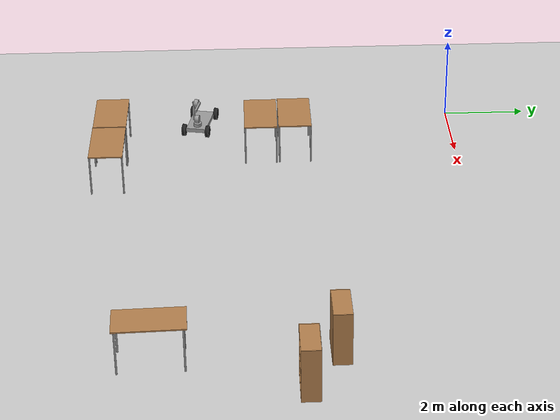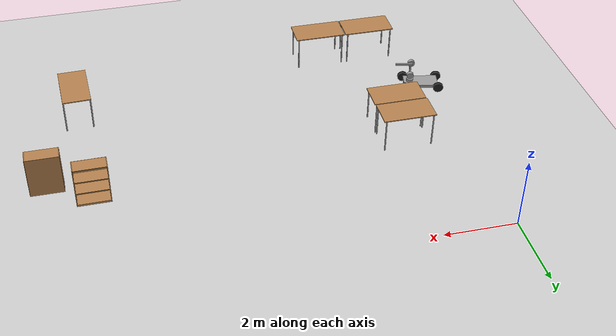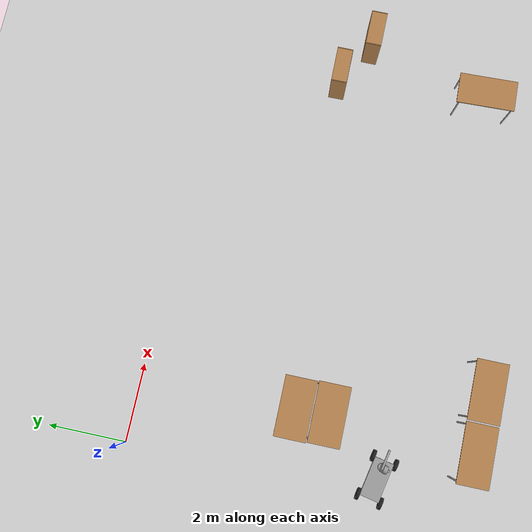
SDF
<sdf version="1.7">
 <world name="default">
  <model name="ground_plane">
   <static>1</static>
   <link name="link">
    <collision name="collision">
     <geometry><plane><normal>0 0 1</normal><size>100 100</size></plane></geometry>
     <surface>
      <contact><collide_bitmask>65535</collide_bitmask></contact>
      <friction><ode><mu>100</mu><mu2>50</mu2></ode></friction>
     </surface>
    </collision>
    <visual name="visual">
     <cast_shadows>0</cast_shadows>
     <geometry><plane><normal>0 0 1</normal><size>100 100</size></plane></geometry>
     <material>
      <script><uri>file://media/materials/scripts/gazebo.material</uri><name>Gazebo/Grey</name></script>
     </material>
    </visual>
   </link>
  </model>
  <model name="cartArm">
   <link name="link_1">
    <inertial>
     <mass>1</mass>
     <inertia><ixx>0.145833</ixx><ixy>0</ixy><ixz>0</ixz><iyy>0.145833</iyy><iyz>0</iyz><izz>0.125</izz></inertia>
    </inertial>
    <pose>0.017175 0.00621 -0.229836 0 -0 0</pose>
    <visual name="visual">
     <geometry><cylinder><radius>0.1</radius><length>0.1</length></cylinder></geometry>
     <material>
      <lighting>1</lighting>
      <script><uri>file://media/materials/scripts/gazebo.material</uri><name>Gazebo/Grey</name></script>
      <shader type="pixel"><normal_map>__default__</normal_map></shader>
      <ambient>0.3 0.3 0.3 1</ambient>
      <diffuse>0.7 0.7 0.7 1</diffuse>
      <specular>0.01 0.01 0.01 1</specular>
      <emissive>0 0 0 1</emissive>
     </material>
    </visual>
    <collision name="collision">
     <geometry><cylinder><radius>0.1</radius><length>0.1</length></cylinder></geometry>
     <surface>
      <friction>
       <ode><mu>1</mu><mu2>1</mu2><fdir1>0 0 0</fdir1><slip1>0</slip1><slip2>0</slip2></ode>
       <torsional>
        <coefficient>1</coefficient>
        <patch_radius>0</patch_radius>
        <surface_radius>0</surface_radius>
        <use_patch_radius>1</use_patch_radius>
        <ode><slip>0</slip></ode>
       </torsional>
      </friction>
      <bounce><restitution_coefficient>0</restitution_coefficient><threshold>1e+06</threshold></bounce>
      <contact>
       <collide_without_contact>0</collide_without_contact>
       <collide_without_contact_bitmask>1</collide_without_contact_bitmask>
       <collide_bitmask>1</collide_bitmask>
       <ode>
        <soft_cfm>0</soft_cfm>
        <soft_erp>0.2</soft_erp>
        <kp>1e+13</kp>
        <kd>1</kd>
        <max_vel>0.01</max_vel>
        <min_depth>0</min_depth>
       </ode>
       <bullet>
        <split_impulse>1</split_impulse>
        <split_impulse_penetration_threshold>-0.01</split_impulse_penetration_threshold>
        <soft_cfm>0</soft_cfm>
        <soft_erp>0.2</soft_erp>
        <kp>1e+13</kp>
        <kd>1</kd>
       </bullet>
      </contact>
     </surface>
    </collision>
   </link>
   <link name="link_2">
    <inertial>
     <mass>1</mass>
     <inertia><ixx>0.145833</ixx><ixy>0</ixy><ixz>0</ixz><iyy>0.145833</iyy><iyz>0</iyz><izz>0.125</izz></inertia>
    </inertial>
    <pose>0.01439 0.001977 -0.075713 1.57 -0 0</pose>
    <visual name="visual">
     <geometry><cylinder><radius>0.1</radius><length>0.1</length></cylinder></geometry>
     <material>
      <lighting>1</lighting>
      <script><uri>file://media/materials/scripts/gazebo.material</uri><name>Gazebo/Grey</name></script>
      <shader type="pixel"><normal_map>__default__</normal_map></shader>
      <ambient>0.3 0.3 0.3 1</ambient>
      <diffuse>0.7 0.7 0.7 1</diffuse>
      <specular>0.01 0.01 0.01 1</specular>
      <emissive>0 0 0 1</emissive>
     </material>
    </visual>
    <collision name="collision">
     <geometry><cylinder><radius>0.1</radius><length>0.1</length></cylinder></geometry>
     <surface>
      <friction>
       <ode><mu>1</mu><mu2>1</mu2><fdir1>0 0 0</fdir1><slip1>0</slip1><slip2>0</slip2></ode>
       <torsional>
        <coefficient>1</coefficient>
        <patch_radius>0</patch_radius>
        <surface_radius>0</surface_radius>
        <use_patch_radius>1</use_patch_radius>
        <ode><slip>0</slip></ode>
       </torsional>
      </friction>
      <bounce><restitution_coefficient>0</restitution_coefficient><threshold>1e+06</threshold></bounce>
      <contact>
       <collide_without_contact>0</collide_without_contact>
       <collide_without_contact_bitmask>1</collide_without_contact_bitmask>
       <collide_bitmask>1</collide_bitmask>
       <ode>
        <soft_cfm>0</soft_cfm>
        <soft_erp>0.2</soft_erp>
        <kp>1e+13</kp>
        <kd>1</kd>
        <max_vel>0.01</max_vel>
        <min_depth>0</min_depth>
       </ode>
       <bullet>
        <split_impulse>1</split_impulse>
        <split_impulse_penetration_threshold>-0.01</split_impulse_penetration_threshold>
        <soft_cfm>0</soft_cfm>
        <soft_erp>0.2</soft_erp>
        <kp>1e+13</kp>
        <kd>1</kd>
       </bullet>
      </contact>
     </surface>
    </collision>
   </link>
   <link name="link_3">
    <inertial>
     <mass>1</mass>
     <inertia>
      <ixx>0.166667</ixx>
      <ixy>0</ixy>
      <ixz>0</ixz>
      <iyy>0.166667</iyy>
      <iyz>0</iyz>
      <izz>0.166667</izz>
     </inertia>
    </inertial>
    <pose>0.018985 -0.076327 0.156781 0 -0 0</pose>
    <visual name="visual">
     <geometry><box><size>0.05 0.05 0.5</size></box></geometry>
     <material>
      <lighting>1</lighting>
      <script><uri>file://media/materials/scripts/gazebo.material</uri><name>Gazebo/Grey</name></script>
      <shader type="pixel"><normal_map>__default__</normal_map></shader>
      <ambient>0.3 0.3 0.3 1</ambient>
      <diffuse>0.7 0.7 0.7 1</diffuse>
      <specular>0.01 0.01 0.01 1</specular>
      <emissive>0 0 0 1</emissive>
     </material>
    </visual>
    <collision name="collision">
     <geometry><box><size>0.05 0.05 0.05</size></box></geometry>
     <surface>
      <friction>
       <ode><mu>1</mu><mu2>1</mu2><fdir1>0 0 0</fdir1><slip1>0</slip1><slip2>0</slip2></ode>
       <torsional>
        <coefficient>1</coefficient>
        <patch_radius>0</patch_radius>
        <surface_radius>0</surface_radius>
        <use_patch_radius>1</use_patch_radius>
        <ode><slip>0</slip></ode>
       </torsional>
      </friction>
      <bounce><restitution_coefficient>0</restitution_coefficient><threshold>1e+06</threshold></bounce>
      <contact>
       <collide_without_contact>0</collide_without_contact>
       <collide_without_contact_bitmask>1</collide_without_contact_bitmask>
       <collide_bitmask>1</collide_bitmask>
       <ode>
        <soft_cfm>0</soft_cfm>
        <soft_erp>0.2</soft_erp>
        <kp>1e+13</kp>
        <kd>1</kd>
        <max_vel>0.01</max_vel>
        <min_depth>0</min_depth>
       </ode>
       <bullet>
        <split_impulse>1</split_impulse>
        <split_impulse_penetration_threshold>-0.01</split_impulse_penetration_threshold>
        <soft_cfm>0</soft_cfm>
        <soft_erp>0.2</soft_erp>
        <kp>1e+13</kp>
        <kd>1</kd>
       </bullet>
      </contact>
     </surface>
    </collision>
   </link>
   <link name="link_5">
    <inertial>
     <mass>1</mass>
     <inertia><ixx>0.145833</ixx><ixy>0</ixy><ixz>0</ixz><iyy>0.145833</iyy><iyz>0</iyz><izz>0.125</izz></inertia>
    </inertial>
    <pose>0.020886 0.001552 0.367544 1.56575 -0 0</pose>
    <visual name="visual">
     <geometry><cylinder><radius>0.1</radius><length>0.1</length></cylinder></geometry>
     <material>
      <lighting>1</lighting>
      <script><uri>file://media/materials/scripts/gazebo.material</uri><name>Gazebo/Grey</name></script>
      <shader type="pixel"><normal_map>__default__</normal_map></shader>
      <ambient>0.3 0.3 0.3 1</ambient>
      <diffuse>0.7 0.7 0.7 1</diffuse>
      <specular>0.01 0.01 0.01 1</specular>
      <emissive>0 0 0 1</emissive>
     </material>
    </visual>
    <collision name="collision">
     <geometry><cylinder><radius>0.1</radius><length>0.1</length></cylinder></geometry>
     <surface>
      <friction>
       <ode><mu>1</mu><mu2>1</mu2><fdir1>0 0 0</fdir1><slip1>0</slip1><slip2>0</slip2></ode>
       <torsional>
        <coefficient>1</coefficient>
        <patch_radius>0</patch_radius>
        <surface_radius>0</surface_radius>
        <use_patch_radius>1</use_patch_radius>
        <ode><slip>0</slip></ode>
       </torsional>
      </friction>
      <bounce><restitution_coefficient>0</restitution_coefficient><threshold>1e+06</threshold></bounce>
      <contact>
       <collide_without_contact>0</collide_without_contact>
       <collide_without_contact_bitmask>1</collide_without_contact_bitmask>
       <collide_bitmask>1</collide_bitmask>
       <ode>
        <soft_cfm>0</soft_cfm>
        <soft_erp>0.2</soft_erp>
        <kp>1e+13</kp>
        <kd>1</kd>
        <max_vel>0.01</max_vel>
        <min_depth>0</min_depth>
       </ode>
       <bullet>
        <split_impulse>1</split_impulse>
        <split_impulse_penetration_threshold>-0.01</split_impulse_penetration_threshold>
        <soft_cfm>0</soft_cfm>
        <soft_erp>0.2</soft_erp>
        <kp>1e+13</kp>
        <kd>1</kd>
       </bullet>
      </contact>
     </surface>
    </collision>
   </link>
   <link name="link_7">
    <inertial>
     <mass>1</mass>
     <inertia>
      <ixx>0.166667</ixx>
      <ixy>0</ixy>
      <ixz>0</ixz>
      <iyy>0.166667</iyy>
      <iyz>0</iyz>
      <izz>0.166667</izz>
     </inertia>
    </inertial>
    <pose>0.241886 0.078058 0.375502 0 1.56597 0</pose>
    <visual name="visual">
     <geometry><box><size>0.05 0.05 0.5</size></box></geometry>
     <material>
      <lighting>1</lighting>
      <script><uri>file://media/materials/scripts/gazebo.material</uri><name>Gazebo/Grey</name></script>
      <shader type="pixel"><normal_map>__default__</normal_map></shader>
      <ambient>0.3 0.3 0.3 1</ambient>
      <diffuse>0.7 0.7 0.7 1</diffuse>
      <specular>0.01 0.01 0.01 1</specular>
      <emissive>0 0 0 1</emissive>
     </material>
    </visual>
    <collision name="collision">
     <geometry><box><size>0.05 0.05 0.5</size></box></geometry>
     <surface>
      <friction>
       <ode><mu>1</mu><mu2>1</mu2><fdir1>0 0 0</fdir1><slip1>0</slip1><slip2>0</slip2></ode>
       <torsional>
        <coefficient>1</coefficient>
        <patch_radius>0</patch_radius>
        <surface_radius>0</surface_radius>
        <use_patch_radius>1</use_patch_radius>
        <ode><slip>0</slip></ode>
       </torsional>
      </friction>
      <bounce><restitution_coefficient>0</restitution_coefficient><threshold>1e+06</threshold></bounce>
      <contact>
       <collide_without_contact>0</collide_without_contact>
       <collide_without_contact_bitmask>1</collide_without_contact_bitmask>
       <collide_bitmask>1</collide_bitmask>
       <ode>
        <soft_cfm>0</soft_cfm>
        <soft_erp>0.2</soft_erp>
        <kp>1e+13</kp>
        <kd>1</kd>
        <max_vel>0.01</max_vel>
        <min_depth>0</min_depth>
       </ode>
       <bullet>
        <split_impulse>1</split_impulse>
        <split_impulse_penetration_threshold>-0.01</split_impulse_penetration_threshold>
        <soft_cfm>0</soft_cfm>
        <soft_erp>0.2</soft_erp>
        <kp>1e+13</kp>
        <kd>1</kd>
       </bullet>
      </contact>
     </surface>
    </collision>
   </link>
   <model name="cart_front_steer">
    <link name="chassis">
     <pose>0 0 0.15 0 -0 0</pose>
     <inertial>
      <pose>0.1 0 0 0 -0 0</pose>
      <mass>10</mass>
      <inertia>
       <ixx>0.216667</ixx>
       <iyy>0.841667</iyy>
       <izz>1.04167</izz>
       <ixy>0</ixy>
       <ixz>0</ixz>
       <iyz>0</iyz>
      </inertia>
     </inertial>
     <collision name="collision"><geometry><box><size>1 0.5 0.1</size></box></geometry></collision>
     <visual name="visual">
      <geometry><box><size>1 0.5 0.1</size></box></geometry>
      <material>
       <script><uri>file://media/materials/scripts/gazebo.material</uri><name>Gazebo/Grey</name></script>
      </material>
     </visual>
    </link>
    <link name="wheel_front_left">
     <pose>0.5 0.298 0.15 -1.5708 -0.087266 0</pose>
     <inertial>
      <mass>0.5</mass>
      <inertia>
       <ixx>0.00307917</ixx>
       <iyy>0.00307917</iyy>
       <izz>0.005625</izz>
       <ixy>0</ixy>
       <ixz>0</ixz>
       <iyz>0</iyz>
      </inertia>
     </inertial>
     <collision name="collision">
      <geometry><cylinder><radius>0.15</radius><length>0.08</length></cylinder></geometry>
     </collision>
     <visual name="visual">
      <geometry><cylinder><radius>0.15</radius><length>0.08</length></cylinder></geometry>
      <material>
       <script><uri>file://media/materials/scripts/gazebo.material</uri><name>Gazebo/Black</name></script>
      </material>
     </visual>
    </link>
    <joint name="wheel_front_left_steer_spin" type="universal">
     <parent>chassis</parent>
     <child>wheel_front_left</child>
     <axis>
      <xyz>0 -1 0</xyz>
      <limit><lower>-0.610865</lower><upper>0.610865</upper></limit>
      <dynamics><spring_reference>0</spring_reference><spring_stiffness>0</spring_stiffness></dynamics>
     </axis>
     <axis2>
      <xyz>0 0 1</xyz>
      <limit><upper>1e+16</upper><lower>-1e+16</lower></limit>
      <dynamics><spring_reference>0</spring_reference><spring_stiffness>0</spring_stiffness></dynamics>
     </axis2>
    </joint>
    <link name="wheel_front_right">
     <pose>0.5 -0.298 0.15 -1.5708 -0.087266 0</pose>
     <inertial>
      <mass>0.5</mass>
      <inertia>
       <ixx>0.00307917</ixx>
       <iyy>0.00307917</iyy>
       <izz>0.005625</izz>
       <ixy>0</ixy>
       <ixz>0</ixz>
       <iyz>0</iyz>
      </inertia>
     </inertial>
     <collision name="collision">
      <geometry><cylinder><radius>0.15</radius><length>0.08</length></cylinder></geometry>
     </collision>
     <visual name="visual">
      <geometry><cylinder><radius>0.15</radius><length>0.08</length></cylinder></geometry>
      <material>
       <script><uri>file://media/materials/scripts/gazebo.material</uri><name>Gazebo/Black</name></script>
      </material>
     </visual>
    </link>
    <joint name="wheel_front_right_steer_spin" type="universal">
     <parent>chassis</parent>
     <child>wheel_front_right</child>
     <axis>
      <xyz>0 -1 0</xyz>
      <limit><lower>-0.610865</lower><upper>0.610865</upper></limit>
      <dynamics><spring_reference>0</spring_reference><spring_stiffness>0</spring_stiffness></dynamics>
     </axis>
     <axis2>
      <xyz>0 0 1</xyz>
      <limit><upper>1e+16</upper><lower>-1e+16</lower></limit>
      <dynamics><spring_reference>0</spring_reference><spring_stiffness>0</spring_stiffness></dynamics>
     </axis2>
    </joint>
    <link name="wheel_rear_left">
     <pose>-0.5 0.298 0.15 -1.5708 0 0</pose>
     <inertial>
      <mass>0.5</mass>
      <inertia>
       <ixx>0.00307917</ixx>
       <iyy>0.00307917</iyy>
       <izz>0.005625</izz>
       <ixy>0</ixy>
       <ixz>0</ixz>
       <iyz>0</iyz>
      </inertia>
     </inertial>
     <collision name="collision">
      <geometry><cylinder><radius>0.15</radius><length>0.08</length></cylinder></geometry>
     </collision>
     <visual name="visual">
      <geometry><cylinder><radius>0.15</radius><length>0.08</length></cylinder></geometry>
      <material>
       <script><uri>file://media/materials/scripts/gazebo.material</uri><name>Gazebo/Black</name></script>
      </material>
     </visual>
    </link>
    <joint name="wheel_rear_left_spin" type="revolute">
     <parent>chassis</parent>
     <child>wheel_rear_left</child>
     <axis>
      <xyz>0 0 1</xyz>
      <limit><lower>-1e+16</lower><upper>1e+16</upper></limit>
      <dynamics><spring_reference>0</spring_reference><spring_stiffness>0</spring_stiffness></dynamics>
     </axis>
    </joint>
    <link name="wheel_rear_right">
     <pose>-0.5 -0.298 0.15 -1.5708 0 0</pose>
     <inertial>
      <mass>0.5</mass>
      <inertia>
       <ixx>0.00307917</ixx>
       <iyy>0.00307917</iyy>
       <izz>0.005625</izz>
       <ixy>0</ixy>
       <ixz>0</ixz>
       <iyz>0</iyz>
      </inertia>
     </inertial>
     <collision name="collision">
      <geometry><cylinder><radius>0.15</radius><length>0.08</length></cylinder></geometry>
     </collision>
     <visual name="visual">
      <geometry><cylinder><radius>0.15</radius><length>0.08</length></cylinder></geometry>
      <material>
       <script><uri>file://media/materials/scripts/gazebo.material</uri><name>Gazebo/Black</name></script>
      </material>
     </visual>
    </link>
    <joint name="wheel_rear_right_spin" type="revolute">
     <parent>chassis</parent>
     <child>wheel_rear_right</child>
     <axis>
      <xyz>0 0 1</xyz>
      <limit><lower>-1e+16</lower><upper>1e+16</upper></limit>
      <dynamics><spring_reference>0</spring_reference><spring_stiffness>0</spring_stiffness></dynamics>
     </axis>
    </joint>
    <pose>-0.305476 -0.001763 -0.465119 0 -0 0</pose>
   </model>
   <joint name="chassis_JOINT_0" type="fixed">
    <parent>cart_front_steer::chassis</parent>
    <child>link_1</child>
    <physics>
     <ode><limit><cfm>0</cfm><erp>0.2</erp></limit><suspension><cfm>0</cfm><erp>0.2</erp></suspension></ode>
    </physics>
   </joint>
   <joint name="link_1_JOINT_1" type="revolute">
    <parent>link_1</parent>
    <child>link_2</child>
    <axis>
     <xyz>0 1 0</xyz>
     <limit>
      <lower>-1.79769e+308</lower>
      <upper>1.79769e+308</upper>
      <effort>-1</effort>
      <velocity>-1</velocity>
     </limit>
     <dynamics>
      <spring_reference>0</spring_reference>
      <spring_stiffness>0</spring_stiffness>
      <damping>0</damping>
     </dynamics>
    </axis>
    <physics>
     <ode><limit><cfm>0</cfm><erp>0.2</erp></limit><suspension><cfm>0</cfm><erp>0.2</erp></suspension></ode>
    </physics>
   </joint>
   <joint name="link_2_JOINT_3" type="fixed">
    <parent>link_3</parent>
    <child>link_2</child>
    <physics>
     <ode><limit><cfm>0</cfm><erp>0.2</erp></limit><suspension><cfm>0</cfm><erp>0.2</erp></suspension></ode>
    </physics>
   </joint>
   <joint name="link_3_JOINT_5" type="revolute">
    <parent>link_3</parent>
    <child>link_5</child>
    <axis>
     <xyz>0 0 1</xyz>
     <limit>
      <lower>-1.79769e+308</lower>
      <upper>1.79769e+308</upper>
      <effort>-1</effort>
      <velocity>-1</velocity>
     </limit>
     <dynamics>
      <spring_reference>0</spring_reference>
      <spring_stiffness>0</spring_stiffness>
      <damping>0</damping>
     </dynamics>
    </axis>
    <physics>
     <ode><limit><cfm>0</cfm><erp>0.2</erp></limit><suspension><cfm>0</cfm><erp>0.2</erp></suspension></ode>
    </physics>
   </joint>
   <joint name="link_7_JOINT_6" type="fixed">
    <parent>link_7</parent>
    <child>link_5</child>
    <physics>
     <ode><limit><cfm>0</cfm><erp>0.2</erp></limit><suspension><cfm>0</cfm><erp>0.2</erp></suspension></ode>
    </physics>
   </joint>
   <static>0</static>
   <pose>0.74312 -6.38981 0.465117 3e-06 3e-06 -0.204293</pose>
  </model>
  <model name="table">
   <static>1</static>
   <link name="link">
    <collision name="surface">
     <pose>0 0 1 0 -0 0</pose>
     <geometry><box><size>1.5 0.8 0.03</size></box></geometry>
     <surface><friction><ode><mu>0.6</mu><mu2>0.6</mu2></ode></friction></surface>
    </collision>
    <visual name="visual1">
     <pose>0 0 1 0 -0 0</pose>
     <geometry><box><size>1.5 0.8 0.03</size></box></geometry>
     <material>
      <script><uri>file://media/materials/scripts/gazebo.material</uri><name>Gazebo/Wood</name></script>
     </material>
    </visual>
    <collision name="front_left_leg">
     <pose>0.68 0.38 0.5 0 -0 0</pose>
     <geometry><cylinder><radius>0.02</radius><length>1</length></cylinder></geometry>
    </collision>
    <visual name="front_left_leg">
     <pose>0.68 0.38 0.5 0 -0 0</pose>
     <geometry><cylinder><radius>0.02</radius><length>1</length></cylinder></geometry>
     <material>
      <script><uri>file://media/materials/scripts/gazebo.material</uri><name>Gazebo/Grey</name></script>
     </material>
    </visual>
    <collision name="front_right_leg">
     <pose>0.68 -0.38 0.5 0 -0 0</pose>
     <geometry><cylinder><radius>0.02</radius><length>1</length></cylinder></geometry>
    </collision>
    <visual name="front_right_leg">
     <pose>0.68 -0.38 0.5 0 -0 0</pose>
     <geometry><cylinder><radius>0.02</radius><length>1</length></cylinder></geometry>
     <material>
      <script><uri>file://media/materials/scripts/gazebo.material</uri><name>Gazebo/Grey</name></script>
     </material>
    </visual>
    <collision name="back_right_leg">
     <pose>-0.68 -0.38 0.5 0 -0 0</pose>
     <geometry><cylinder><radius>0.02</radius><length>1</length></cylinder></geometry>
    </collision>
    <visual name="back_right_leg">
     <pose>-0.68 -0.38 0.5 0 -0 0</pose>
     <geometry><cylinder><radius>0.02</radius><length>1</length></cylinder></geometry>
     <material>
      <script><uri>file://media/materials/scripts/gazebo.material</uri><name>Gazebo/Grey</name></script>
     </material>
    </visual>
    <collision name="back_left_leg">
     <pose>-0.68 0.38 0.5 0 -0 0</pose>
     <geometry><cylinder><radius>0.02</radius><length>1</length></cylinder></geometry>
    </collision>
    <visual name="back_left_leg">
     <pose>-0.68 0.38 0.5 0 -0 0</pose>
     <geometry><cylinder><radius>0.02</radius><length>1</length></cylinder></geometry>
     <material>
      <script><uri>file://media/materials/scripts/gazebo.material</uri><name>Gazebo/Grey</name></script>
     </material>
    </visual>
   </link>
   <pose>1.73395 -3.9832 0 0 -0 0</pose>
  </model>
  <model name="table_0">
   <static>1</static>
   <link name="link">
    <collision name="surface">
     <pose>0 0 1 0 -0 0</pose>
     <geometry><box><size>1.5 0.8 0.03</size></box></geometry>
     <surface><friction><ode><mu>0.6</mu><mu2>0.6</mu2></ode></friction></surface>
    </collision>
    <visual name="visual1">
     <pose>0 0 1 0 -0 0</pose>
     <geometry><box><size>1.5 0.8 0.03</size></box></geometry>
     <material>
      <script><uri>file://media/materials/scripts/gazebo.material</uri><name>Gazebo/Wood</name></script>
     </material>
    </visual>
    <collision name="front_left_leg">
     <pose>0.68 0.38 0.5 0 -0 0</pose>
     <geometry><cylinder><radius>0.02</radius><length>1</length></cylinder></geometry>
    </collision>
    <visual name="front_left_leg">
     <pose>0.68 0.38 0.5 0 -0 0</pose>
     <geometry><cylinder><radius>0.02</radius><length>1</length></cylinder></geometry>
     <material>
      <script><uri>file://media/materials/scripts/gazebo.material</uri><name>Gazebo/Grey</name></script>
     </material>
    </visual>
    <collision name="front_right_leg">
     <pose>0.68 -0.38 0.5 0 -0 0</pose>
     <geometry><cylinder><radius>0.02</radius><length>1</length></cylinder></geometry>
    </collision>
    <visual name="front_right_leg">
     <pose>0.68 -0.38 0.5 0 -0 0</pose>
     <geometry><cylinder><radius>0.02</radius><length>1</length></cylinder></geometry>
     <material>
      <script><uri>file://media/materials/scripts/gazebo.material</uri><name>Gazebo/Grey</name></script>
     </material>
    </visual>
    <collision name="back_right_leg">
     <pose>-0.68 -0.38 0.5 0 -0 0</pose>
     <geometry><cylinder><radius>0.02</radius><length>1</length></cylinder></geometry>
    </collision>
    <visual name="back_right_leg">
     <pose>-0.68 -0.38 0.5 0 -0 0</pose>
     <geometry><cylinder><radius>0.02</radius><length>1</length></cylinder></geometry>
     <material>
      <script><uri>file://media/materials/scripts/gazebo.material</uri><name>Gazebo/Grey</name></script>
     </material>
    </visual>
    <collision name="back_left_leg">
     <pose>-0.68 0.38 0.5 0 -0 0</pose>
     <geometry><cylinder><radius>0.02</radius><length>1</length></cylinder></geometry>
    </collision>
    <visual name="back_left_leg">
     <pose>-0.68 0.38 0.5 0 -0 0</pose>
     <geometry><cylinder><radius>0.02</radius><length>1</length></cylinder></geometry>
     <material>
      <script><uri>file://media/materials/scripts/gazebo.material</uri><name>Gazebo/Grey</name></script>
     </material>
    </visual>
   </link>
   <pose>1.75648 -4.81123 0 0 -0 0</pose>
  </model>
  <model name="table_3">
   <static>1</static>
   <link name="link">
    <collision name="surface">
     <pose>0 0 1 0 -0 0</pose>
     <geometry><box><size>1.5 0.8 0.03</size></box></geometry>
     <surface><friction><ode><mu>0.6</mu><mu2>0.6</mu2></ode></friction></surface>
    </collision>
    <visual name="visual1">
     <pose>0 0 1 0 -0 0</pose>
     <geometry><box><size>1.5 0.8 0.03</size></box></geometry>
     <material>
      <script><uri>file://media/materials/scripts/gazebo.material</uri><name>Gazebo/Wood</name></script>
     </material>
    </visual>
    <collision name="front_left_leg">
     <pose>0.68 0.38 0.5 0 -0 0</pose>
     <geometry><cylinder><radius>0.02</radius><length>1</length></cylinder></geometry>
    </collision>
    <visual name="front_left_leg">
     <pose>0.68 0.38 0.5 0 -0 0</pose>
     <geometry><cylinder><radius>0.02</radius><length>1</length></cylinder></geometry>
     <material>
      <script><uri>file://media/materials/scripts/gazebo.material</uri><name>Gazebo/Grey</name></script>
     </material>
    </visual>
    <collision name="front_right_leg">
     <pose>0.68 -0.38 0.5 0 -0 0</pose>
     <geometry><cylinder><radius>0.02</radius><length>1</length></cylinder></geometry>
    </collision>
    <visual name="front_right_leg">
     <pose>0.68 -0.38 0.5 0 -0 0</pose>
     <geometry><cylinder><radius>0.02</radius><length>1</length></cylinder></geometry>
     <material>
      <script><uri>file://media/materials/scripts/gazebo.material</uri><name>Gazebo/Grey</name></script>
     </material>
    </visual>
    <collision name="back_right_leg">
     <pose>-0.68 -0.38 0.5 0 -0 0</pose>
     <geometry><cylinder><radius>0.02</radius><length>1</length></cylinder></geometry>
    </collision>
    <visual name="back_right_leg">
     <pose>-0.68 -0.38 0.5 0 -0 0</pose>
     <geometry><cylinder><radius>0.02</radius><length>1</length></cylinder></geometry>
     <material>
      <script><uri>file://media/materials/scripts/gazebo.material</uri><name>Gazebo/Grey</name></script>
     </material>
    </visual>
    <collision name="back_left_leg">
     <pose>-0.68 0.38 0.5 0 -0 0</pose>
     <geometry><cylinder><radius>0.02</radius><length>1</length></cylinder></geometry>
    </collision>
    <visual name="back_left_leg">
     <pose>-0.68 0.38 0.5 0 -0 0</pose>
     <geometry><cylinder><radius>0.02</radius><length>1</length></cylinder></geometry>
     <material>
      <script><uri>file://media/materials/scripts/gazebo.material</uri><name>Gazebo/Grey</name></script>
     </material>
    </visual>
   </link>
   <pose>3.09695 -8.46773 0 0 -0 0</pose>
  </model>
  <model name="table_4">
   <static>1</static>
   <link name="link">
    <collision name="surface">
     <pose>0 0 1 0 -0 0</pose>
     <geometry><box><size>1.5 0.8 0.03</size></box></geometry>
     <surface><friction><ode><mu>0.6</mu><mu2>0.6</mu2></ode></friction></surface>
    </collision>
    <visual name="visual1">
     <pose>0 0 1 0 -0 0</pose>
     <geometry><box><size>1.5 0.8 0.03</size></box></geometry>
     <material>
      <script><uri>file://media/materials/scripts/gazebo.material</uri><name>Gazebo/Wood</name></script>
     </material>
    </visual>
    <collision name="front_left_leg">
     <pose>0.68 0.38 0.5 0 -0 0</pose>
     <geometry><cylinder><radius>0.02</radius><length>1</length></cylinder></geometry>
    </collision>
    <visual name="front_left_leg">
     <pose>0.68 0.38 0.5 0 -0 0</pose>
     <geometry><cylinder><radius>0.02</radius><length>1</length></cylinder></geometry>
     <material>
      <script><uri>file://media/materials/scripts/gazebo.material</uri><name>Gazebo/Grey</name></script>
     </material>
    </visual>
    <collision name="front_right_leg">
     <pose>0.68 -0.38 0.5 0 -0 0</pose>
     <geometry><cylinder><radius>0.02</radius><length>1</length></cylinder></geometry>
    </collision>
    <visual name="front_right_leg">
     <pose>0.68 -0.38 0.5 0 -0 0</pose>
     <geometry><cylinder><radius>0.02</radius><length>1</length></cylinder></geometry>
     <material>
      <script><uri>file://media/materials/scripts/gazebo.material</uri><name>Gazebo/Grey</name></script>
     </material>
    </visual>
    <collision name="back_right_leg">
     <pose>-0.68 -0.38 0.5 0 -0 0</pose>
     <geometry><cylinder><radius>0.02</radius><length>1</length></cylinder></geometry>
    </collision>
    <visual name="back_right_leg">
     <pose>-0.68 -0.38 0.5 0 -0 0</pose>
     <geometry><cylinder><radius>0.02</radius><length>1</length></cylinder></geometry>
     <material>
      <script><uri>file://media/materials/scripts/gazebo.material</uri><name>Gazebo/Grey</name></script>
     </material>
    </visual>
    <collision name="back_left_leg">
     <pose>-0.68 0.38 0.5 0 -0 0</pose>
     <geometry><cylinder><radius>0.02</radius><length>1</length></cylinder></geometry>
    </collision>
    <visual name="back_left_leg">
     <pose>-0.68 0.38 0.5 0 -0 0</pose>
     <geometry><cylinder><radius>0.02</radius><length>1</length></cylinder></geometry>
     <material>
      <script><uri>file://media/materials/scripts/gazebo.material</uri><name>Gazebo/Grey</name></script>
     </material>
    </visual>
   </link>
   <pose>1.56083 -8.46222 0 0 -0 0</pose>
  </model>
  <model name="table_14">
   <static>1</static>
   <link name="link">
    <collision name="surface">
     <pose>0 0 1 0 -0 0</pose>
     <geometry><box><size>1.5 0.8 0.03</size></box></geometry>
     <surface><friction><ode><mu>0.6</mu><mu2>0.6</mu2></ode></friction></surface>
    </collision>
    <visual name="visual1">
     <pose>0 0 1 0 -0 0</pose>
     <geometry><box><size>1.5 0.8 0.03</size></box></geometry>
     <material>
      <script><uri>file://media/materials/scripts/gazebo.material</uri><name>Gazebo/Wood</name></script>
     </material>
    </visual>
    <collision name="front_left_leg">
     <pose>0.68 0.38 0.5 0 -0 0</pose>
     <geometry><cylinder><radius>0.02</radius><length>1</length></cylinder></geometry>
    </collision>
    <visual name="front_left_leg">
     <pose>0.68 0.38 0.5 0 -0 0</pose>
     <geometry><cylinder><radius>0.02</radius><length>1</length></cylinder></geometry>
     <material>
      <script><uri>file://media/materials/scripts/gazebo.material</uri><name>Gazebo/Grey</name></script>
     </material>
    </visual>
    <collision name="front_right_leg">
     <pose>0.68 -0.38 0.5 0 -0 0</pose>
     <geometry><cylinder><radius>0.02</radius><length>1</length></cylinder></geometry>
    </collision>
    <visual name="front_right_leg">
     <pose>0.68 -0.38 0.5 0 -0 0</pose>
     <geometry><cylinder><radius>0.02</radius><length>1</length></cylinder></geometry>
     <material>
      <script><uri>file://media/materials/scripts/gazebo.material</uri><name>Gazebo/Grey</name></script>
     </material>
    </visual>
    <collision name="back_right_leg">
     <pose>-0.68 -0.38 0.5 0 -0 0</pose>
     <geometry><cylinder><radius>0.02</radius><length>1</length></cylinder></geometry>
    </collision>
    <visual name="back_right_leg">
     <pose>-0.68 -0.38 0.5 0 -0 0</pose>
     <geometry><cylinder><radius>0.02</radius><length>1</length></cylinder></geometry>
     <material>
      <script><uri>file://media/materials/scripts/gazebo.material</uri><name>Gazebo/Grey</name></script>
     </material>
    </visual>
    <collision name="back_left_leg">
     <pose>-0.68 0.38 0.5 0 -0 0</pose>
     <geometry><cylinder><radius>0.02</radius><length>1</length></cylinder></geometry>
    </collision>
    <visual name="back_left_leg">
     <pose>-0.68 0.38 0.5 0 -0 0</pose>
     <geometry><cylinder><radius>0.02</radius><length>1</length></cylinder></geometry>
     <material>
      <script><uri>file://media/materials/scripts/gazebo.material</uri><name>Gazebo/Grey</name></script>
     </material>
    </visual>
   </link>
   <pose>10.6267 -7.17024 0 0 -0 1.60543</pose>
  </model>
  <model name="bookshelf">
   <static>1</static>
   <link name="link">
    <inertial><mass>1</mass></inertial>
    <collision name="back">
     <pose>0 0.005 0.6 0 -0 0</pose>
     <geometry><box><size>0.9 0.01 1.2</size></box></geometry>
    </collision>
    <visual name="visual1">
     <pose>0 0.005 0.6 0 -0 0</pose>
     <geometry><box><size>0.9 0.01 1.2</size></box></geometry>
     <material>
      <script><uri>file://media/materials/scripts/gazebo.material</uri><name>Gazebo/Wood</name></script>
     </material>
    </visual>
    <collision name="left_side">
     <pose>0.45 -0.195 0.6 0 -0 0</pose>
     <geometry><box><size>0.02 0.4 1.2</size></box></geometry>
    </collision>
    <visual name="visual2">
     <pose>0.45 -0.195 0.6 0 -0 0</pose>
     <geometry><box><size>0.02 0.4 1.2</size></box></geometry>
     <material>
      <script><uri>file://media/materials/scripts/gazebo.material</uri><name>Gazebo/Wood</name></script>
     </material>
    </visual>
    <collision name="right_side">
     <pose>-0.45 -0.195 0.6 0 -0 0</pose>
     <geometry><box><size>0.02 0.4 1.2</size></box></geometry>
    </collision>
    <visual name="visual3">
     <pose>-0.45 -0.195 0.6 0 -0 0</pose>
     <geometry><box><size>0.02 0.4 1.2</size></box></geometry>
     <material>
      <script><uri>file://media/materials/scripts/gazebo.material</uri><name>Gazebo/Wood</name></script>
     </material>
    </visual>
    <collision name="bottom">
     <pose>0 -0.195 0.03 0 -0 0</pose>
     <geometry><box><size>0.88 0.4 0.06</size></box></geometry>
    </collision>
    <visual name="visual4">
     <pose>0 -0.195 0.03 0 -0 0</pose>
     <geometry><box><size>0.88 0.4 0.06</size></box></geometry>
     <material>
      <script><uri>file://media/materials/scripts/gazebo.material</uri><name>Gazebo/Wood</name></script>
     </material>
    </visual>
    <collision name="top">
     <pose>0 -0.195 1.19 0 -0 0</pose>
     <geometry><box><size>0.88 0.4 0.02</size></box></geometry>
    </collision>
    <visual name="visual5">
     <pose>0 -0.195 1.19 0 -0 0</pose>
     <geometry><box><size>0.88 0.4 0.02</size></box></geometry>
     <material>
      <script><uri>file://media/materials/scripts/gazebo.material</uri><name>Gazebo/Wood</name></script>
     </material>
    </visual>
    <collision name="low_shelf">
     <pose>0 -0.195 0.43 0 -0 0</pose>
     <geometry><box><size>0.88 0.4 0.02</size></box></geometry>
    </collision>
    <visual name="visual6">
     <pose>0 -0.195 0.43 0 -0 0</pose>
     <geometry><box><size>0.88 0.4 0.02</size></box></geometry>
     <material>
      <script><uri>file://media/materials/scripts/gazebo.material</uri><name>Gazebo/Wood</name></script>
     </material>
    </visual>
    <collision name="high_shelf">
     <pose>0 -0.195 0.8 0 -0 0</pose>
     <geometry><box><size>0.88 0.4 0.02</size></box></geometry>
    </collision>
    <visual name="visual7">
     <pose>0 -0.195 0.8 0 -0 0</pose>
     <geometry><box><size>0.88 0.4 0.02</size></box></geometry>
     <material>
      <script><uri>file://media/materials/scripts/gazebo.material</uri><name>Gazebo/Wood</name></script>
     </material>
    </visual>
   </link>
   <pose>11.6615 -3.84141 0 0 -0 0</pose>
  </model>
  <model name="bookshelf_0">
   <static>1</static>
   <link name="link">
    <inertial><mass>1</mass></inertial>
    <collision name="back">
     <pose>0 0.005 0.6 0 -0 0</pose>
     <geometry><box><size>0.9 0.01 1.2</size></box></geometry>
    </collision>
    <visual name="visual1">
     <pose>0 0.005 0.6 0 -0 0</pose>
     <geometry><box><size>0.9 0.01 1.2</size></box></geometry>
     <material>
      <script><uri>file://media/materials/scripts/gazebo.material</uri><name>Gazebo/Wood</name></script>
     </material>
    </visual>
    <collision name="left_side">
     <pose>0.45 -0.195 0.6 0 -0 0</pose>
     <geometry><box><size>0.02 0.4 1.2</size></box></geometry>
    </collision>
    <visual name="visual2">
     <pose>0.45 -0.195 0.6 0 -0 0</pose>
     <geometry><box><size>0.02 0.4 1.2</size></box></geometry>
     <material>
      <script><uri>file://media/materials/scripts/gazebo.material</uri><name>Gazebo/Wood</name></script>
     </material>
    </visual>
    <collision name="right_side">
     <pose>-0.45 -0.195 0.6 0 -0 0</pose>
     <geometry><box><size>0.02 0.4 1.2</size></box></geometry>
    </collision>
    <visual name="visual3">
     <pose>-0.45 -0.195 0.6 0 -0 0</pose>
     <geometry><box><size>0.02 0.4 1.2</size></box></geometry>
     <material>
      <script><uri>file://media/materials/scripts/gazebo.material</uri><name>Gazebo/Wood</name></script>
     </material>
    </visual>
    <collision name="bottom">
     <pose>0 -0.195 0.03 0 -0 0</pose>
     <geometry><box><size>0.88 0.4 0.06</size></box></geometry>
    </collision>
    <visual name="visual4">
     <pose>0 -0.195 0.03 0 -0 0</pose>
     <geometry><box><size>0.88 0.4 0.06</size></box></geometry>
     <material>
      <script><uri>file://media/materials/scripts/gazebo.material</uri><name>Gazebo/Wood</name></script>
     </material>
    </visual>
    <collision name="top">
     <pose>0 -0.195 1.19 0 -0 0</pose>
     <geometry><box><size>0.88 0.4 0.02</size></box></geometry>
    </collision>
    <visual name="visual5">
     <pose>0 -0.195 1.19 0 -0 0</pose>
     <geometry><box><size>0.88 0.4 0.02</size></box></geometry>
     <material>
      <script><uri>file://media/materials/scripts/gazebo.material</uri><name>Gazebo/Wood</name></script>
     </material>
    </visual>
    <collision name="low_shelf">
     <pose>0 -0.195 0.43 0 -0 0</pose>
     <geometry><box><size>0.88 0.4 0.02</size></box></geometry>
    </collision>
    <visual name="visual6">
     <pose>0 -0.195 0.43 0 -0 0</pose>
     <geometry><box><size>0.88 0.4 0.02</size></box></geometry>
     <material>
      <script><uri>file://media/materials/scripts/gazebo.material</uri><name>Gazebo/Wood</name></script>
     </material>
    </visual>
    <collision name="high_shelf">
     <pose>0 -0.195 0.8 0 -0 0</pose>
     <geometry><box><size>0.88 0.4 0.02</size></box></geometry>
    </collision>
    <visual name="visual7">
     <pose>0 -0.195 0.8 0 -0 0</pose>
     <geometry><box><size>0.88 0.4 0.02</size></box></geometry>
     <material>
      <script><uri>file://media/materials/scripts/gazebo.material</uri><name>Gazebo/Wood</name></script>
     </material>
    </visual>
   </link>
   <pose>10.4857 -3.5522 0 0 0 -3.13454</pose>
  </model>
 </world>
</sdf>
